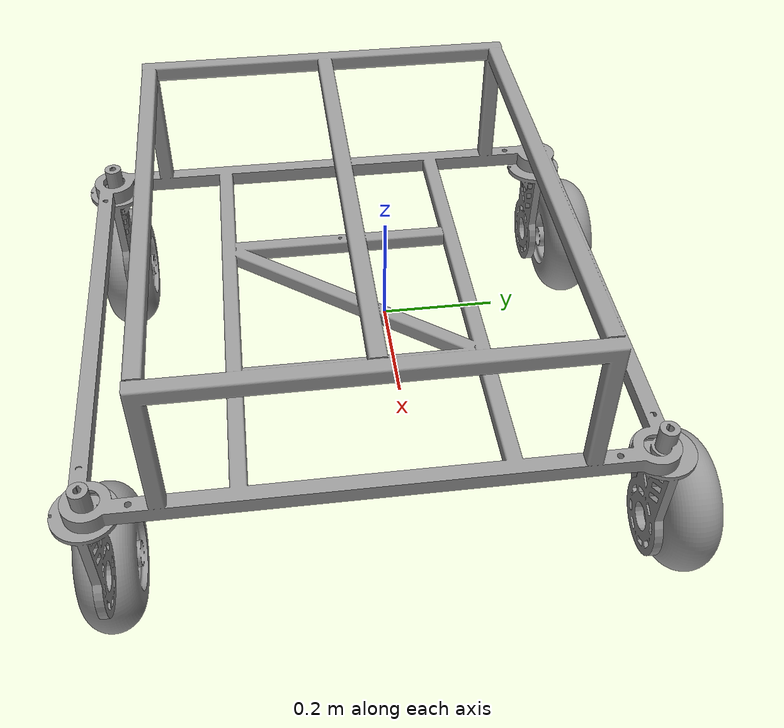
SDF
<?xml version='1.0'?>
<sdf version='1.7'>
  <model name='final'>
    <link name='link_2'>
      <inertial>
        <mass>1</mass>
        <inertia>
          <ixx>0.166667</ixx>
          <ixy>0</ixy>
          <ixz>0</ixz>
          <iyy>0.166667</iyy>
          <iyz>0</iyz>
          <izz>0.166667</izz>
        </inertia>
        <pose>0 0 0 0 -0 0</pose>
      </inertial>
      <pose>-0.311124 0.373143 0.112466 0 -0 0</pose>
      <gravity>1</gravity>
      <self_collide>0</self_collide>
      <kinematic>0</kinematic>
      <enable_wind>0</enable_wind>
      <visual name='visual'>
        <pose>0 0 0 0 -0 0</pose>
        <geometry>
          <mesh>
            <uri>/home/sammy-ros/catkin_ws/src/bot_4wd/urdf/meshes/base_frame.dae</uri>
            <scale>1 1 1</scale>
          </mesh>
        </geometry>
        <material>
          <lighting>1</lighting>
          <script>
            <uri>file://media/materials/scripts/gazebo.material</uri>
            <name>Gazebo/Grey</name>
          </script>
          <shader type='pixel'>
            <normal_map>__default__</normal_map>
          </shader>
          <ambient>0.3 0.3 0.3 1</ambient>
          <diffuse>0.7 0.7 0.7 1</diffuse>
          <specular>0.01 0.01 0.01 1</specular>
          <emissive>0 0 0 1</emissive>
        </material>
        <transparency>0</transparency>
        <cast_shadows>1</cast_shadows>
      </visual>
      <collision name='collision'>
        <laser_retro>0</laser_retro>
        <max_contacts>10</max_contacts>
        <pose>0 0 0 0 -0 0</pose>
        <geometry>
          <mesh>
            <uri>/home/sammy-ros/catkin_ws/src/bot_4wd/urdf/meshes/base_frame.dae</uri>
            <scale>1 1 1</scale>
          </mesh>
        </geometry>
        <surface>
          <friction>
            <ode>
              <mu>1</mu>
              <mu2>1</mu2>
              <fdir1>0 0 0</fdir1>
              <slip1>0</slip1>
              <slip2>0</slip2>
            </ode>
            <torsional>
              <coefficient>1</coefficient>
              <patch_radius>0</patch_radius>
              <surface_radius>0</surface_radius>
              <use_patch_radius>1</use_patch_radius>
              <ode>
                <slip>0</slip>
              </ode>
            </torsional>
          </friction>
          <bounce>
            <restitution_coefficient>0</restitution_coefficient>
            <threshold>1e+06</threshold>
          </bounce>
          <contact>
            <collide_without_contact>0</collide_without_contact>
            <collide_without_contact_bitmask>1</collide_without_contact_bitmask>
            <collide_bitmask>1</collide_bitmask>
            <ode>
              <soft_cfm>0</soft_cfm>
              <soft_erp>0.2</soft_erp>
              <kp>1e+13</kp>
              <kd>1</kd>
              <max_vel>0.01</max_vel>
              <min_depth>0</min_depth>
            </ode>
            <bullet>
              <split_impulse>1</split_impulse>
              <split_impulse_penetration_threshold>-0.01</split_impulse_penetration_threshold>
              <soft_cfm>0</soft_cfm>
              <soft_erp>0.2</soft_erp>
              <kp>1e+13</kp>
              <kd>1</kd>
            </bullet>
          </contact>
        </surface>
      </collision>
    </link>
    <link name='link_3'>
      <inertial>
        <mass>1</mass>
        <inertia>
          <ixx>0.166667</ixx>
          <ixy>0</ixy>
          <ixz>0</ixz>
          <iyy>0.166667</iyy>
          <iyz>0</iyz>
          <izz>0.166667</izz>
        </inertia>
        <pose>0 0 0 0 -0 0</pose>
      </inertial>
      <pose>-0.282869 -0.484545 0.150773 0 -0 0</pose>
      <gravity>1</gravity>
      <self_collide>0</self_collide>
      <kinematic>0</kinematic>
      <enable_wind>0</enable_wind>
      <visual name='visual'>
        <pose>0 0 0 0 -0 0</pose>
        <geometry>
          <mesh>
            <uri>/home/sammy-ros/catkin_ws/src/bot_4wd/urdf/meshes/knuckle.dae</uri>
            <scale>1 1 1</scale>
          </mesh>
        </geometry>
        <material>
          <lighting>1</lighting>
          <script>
            <uri>file://media/materials/scripts/gazebo.material</uri>
            <name>Gazebo/Grey</name>
          </script>
          <shader type='pixel'>
            <normal_map>__default__</normal_map>
          </shader>
          <ambient>0.3 0.3 0.3 1</ambient>
          <diffuse>0.7 0.7 0.7 1</diffuse>
          <specular>0.01 0.01 0.01 1</specular>
          <emissive>0 0 0 1</emissive>
        </material>
        <transparency>0</transparency>
        <cast_shadows>1</cast_shadows>
      </visual>
      <collision name='collision'>
        <laser_retro>0</laser_retro>
        <max_contacts>10</max_contacts>
        <pose>0 0 0 0 -0 0</pose>
        <geometry>
          <mesh>
            <uri>/home/sammy-ros/catkin_ws/src/bot_4wd/urdf/meshes/knuckle.dae</uri>
            <scale>1 1 1</scale>
          </mesh>
        </geometry>
        <surface>
          <friction>
            <ode>
              <mu>1</mu>
              <mu2>1</mu2>
              <fdir1>0 0 0</fdir1>
              <slip1>0</slip1>
              <slip2>0</slip2>
            </ode>
            <torsional>
              <coefficient>1</coefficient>
              <patch_radius>0</patch_radius>
              <surface_radius>0</surface_radius>
              <use_patch_radius>1</use_patch_radius>
              <ode>
                <slip>0</slip>
              </ode>
            </torsional>
          </friction>
          <bounce>
            <restitution_coefficient>0</restitution_coefficient>
            <threshold>1e+06</threshold>
          </bounce>
          <contact>
            <collide_without_contact>0</collide_without_contact>
            <collide_without_contact_bitmask>1</collide_without_contact_bitmask>
            <collide_bitmask>1</collide_bitmask>
            <ode>
              <soft_cfm>0</soft_cfm>
              <soft_erp>0.2</soft_erp>
              <kp>1e+13</kp>
              <kd>1</kd>
              <max_vel>0.01</max_vel>
              <min_depth>0</min_depth>
            </ode>
            <bullet>
              <split_impulse>1</split_impulse>
              <split_impulse_penetration_threshold>-0.01</split_impulse_penetration_threshold>
              <soft_cfm>0</soft_cfm>
              <soft_erp>0.2</soft_erp>
              <kp>1e+13</kp>
              <kd>1</kd>
            </bullet>
          </contact>
        </surface>
      </collision>
    </link>
    <link name='link_3_clone'>
      <inertial>
        <mass>1</mass>
        <inertia>
          <ixx>0.166667</ixx>
          <ixy>0</ixy>
          <ixz>0</ixz>
          <iyy>0.166667</iyy>
          <iyz>0</iyz>
          <izz>0.166667</izz>
        </inertia>
        <pose>0 0 0 0 -0 0</pose>
      </inertial>
      <pose>0.485543 -0.491746 0.150529 0 -0 0</pose>
      <gravity>1</gravity>
      <self_collide>0</self_collide>
      <kinematic>0</kinematic>
      <enable_wind>0</enable_wind>
      <visual name='visual'>
        <pose>0 0 0 0 -0 0</pose>
        <geometry>
          <mesh>
            <uri>/home/sammy-ros/catkin_ws/src/bot_4wd/urdf/meshes/knuckle.dae</uri>
            <scale>1 1 1</scale>
          </mesh>
        </geometry>
        <material>
          <lighting>1</lighting>
          <script>
            <uri>file://media/materials/scripts/gazebo.material</uri>
            <name>Gazebo/Grey</name>
          </script>
          <shader type='pixel'>
            <normal_map>__default__</normal_map>
          </shader>
          <ambient>0.3 0.3 0.3 1</ambient>
          <diffuse>0.7 0.7 0.7 1</diffuse>
          <specular>0.01 0.01 0.01 1</specular>
          <emissive>0 0 0 1</emissive>
        </material>
        <transparency>0</transparency>
        <cast_shadows>1</cast_shadows>
      </visual>
      <collision name='collision'>
        <laser_retro>0</laser_retro>
        <max_contacts>10</max_contacts>
        <pose>0 0 0 0 -0 0</pose>
        <geometry>
          <mesh>
            <uri>/home/sammy-ros/catkin_ws/src/bot_4wd/urdf/meshes/knuckle.dae</uri>
            <scale>1 1 1</scale>
          </mesh>
        </geometry>
        <surface>
          <friction>
            <ode>
              <mu>1</mu>
              <mu2>1</mu2>
              <fdir1>0 0 0</fdir1>
              <slip1>0</slip1>
              <slip2>0</slip2>
            </ode>
            <torsional>
              <coefficient>1</coefficient>
              <patch_radius>0</patch_radius>
              <surface_radius>0</surface_radius>
              <use_patch_radius>1</use_patch_radius>
              <ode>
                <slip>0</slip>
              </ode>
            </torsional>
          </friction>
          <bounce>
            <restitution_coefficient>0</restitution_coefficient>
            <threshold>1e+06</threshold>
          </bounce>
          <contact>
            <collide_without_contact>0</collide_without_contact>
            <collide_without_contact_bitmask>1</collide_without_contact_bitmask>
            <collide_bitmask>1</collide_bitmask>
            <ode>
              <soft_cfm>0</soft_cfm>
              <soft_erp>0.2</soft_erp>
              <kp>1e+13</kp>
              <kd>1</kd>
              <max_vel>0.01</max_vel>
              <min_depth>0</min_depth>
            </ode>
            <bullet>
              <split_impulse>1</split_impulse>
              <split_impulse_penetration_threshold>-0.01</split_impulse_penetration_threshold>
              <soft_cfm>0</soft_cfm>
              <soft_erp>0.2</soft_erp>
              <kp>1e+13</kp>
              <kd>1</kd>
            </bullet>
          </contact>
        </surface>
      </collision>
    </link>
    <link name='link_3_clone_clone'>
      <inertial>
        <mass>1</mass>
        <inertia>
          <ixx>0.166667</ixx>
          <ixy>0</ixy>
          <ixz>0</ixz>
          <iyy>0.166667</iyy>
          <iyz>0</iyz>
          <izz>0.166667</izz>
        </inertia>
        <pose>0 0 0 0 -0 0</pose>
      </inertial>
      <pose>-0.276066 0.335701 0.145189 0 -0 0</pose>
      <gravity>1</gravity>
      <self_collide>0</self_collide>
      <kinematic>0</kinematic>
      <enable_wind>0</enable_wind>
      <visual name='visual'>
        <pose>0 0 0 0 -0 0</pose>
        <geometry>
          <mesh>
            <uri>/home/sammy-ros/catkin_ws/src/bot_4wd/urdf/meshes/knuckle.dae</uri>
            <scale>1 1 1</scale>
          </mesh>
        </geometry>
        <material>
          <lighting>1</lighting>
          <script>
            <uri>file://media/materials/scripts/gazebo.material</uri>
            <name>Gazebo/Grey</name>
          </script>
          <shader type='pixel'>
            <normal_map>__default__</normal_map>
          </shader>
          <ambient>0.3 0.3 0.3 1</ambient>
          <diffuse>0.7 0.7 0.7 1</diffuse>
          <specular>0.01 0.01 0.01 1</specular>
          <emissive>0 0 0 1</emissive>
        </material>
        <transparency>0</transparency>
        <cast_shadows>1</cast_shadows>
      </visual>
      <collision name='collision'>
        <laser_retro>0</laser_retro>
        <max_contacts>10</max_contacts>
        <pose>0 0 0 0 -0 0</pose>
        <geometry>
          <mesh>
            <uri>/home/sammy-ros/catkin_ws/src/bot_4wd/urdf/meshes/knuckle.dae</uri>
            <scale>1 1 1</scale>
          </mesh>
        </geometry>
        <surface>
          <friction>
            <ode>
              <mu>1</mu>
              <mu2>1</mu2>
              <fdir1>0 0 0</fdir1>
              <slip1>0</slip1>
              <slip2>0</slip2>
            </ode>
            <torsional>
              <coefficient>1</coefficient>
              <patch_radius>0</patch_radius>
              <surface_radius>0</surface_radius>
              <use_patch_radius>1</use_patch_radius>
              <ode>
                <slip>0</slip>
              </ode>
            </torsional>
          </friction>
          <bounce>
            <restitution_coefficient>0</restitution_coefficient>
            <threshold>1e+06</threshold>
          </bounce>
          <contact>
            <collide_without_contact>0</collide_without_contact>
            <collide_without_contact_bitmask>1</collide_without_contact_bitmask>
            <collide_bitmask>1</collide_bitmask>
            <ode>
              <soft_cfm>0</soft_cfm>
              <soft_erp>0.2</soft_erp>
              <kp>1e+13</kp>
              <kd>1</kd>
              <max_vel>0.01</max_vel>
              <min_depth>0</min_depth>
            </ode>
            <bullet>
              <split_impulse>1</split_impulse>
              <split_impulse_penetration_threshold>-0.01</split_impulse_penetration_threshold>
              <soft_cfm>0</soft_cfm>
              <soft_erp>0.2</soft_erp>
              <kp>1e+13</kp>
              <kd>1</kd>
            </bullet>
          </contact>
        </surface>
      </collision>
    </link>
    <link name='link_3_clone_clone_clone'>
      <inertial>
        <mass>1</mass>
        <inertia>
          <ixx>0.166667</ixx>
          <ixy>0</ixy>
          <ixz>0</ixz>
          <iyy>0.166667</iyy>
          <iyz>0</iyz>
          <izz>0.166667</izz>
        </inertia>
        <pose>0 0 0 0 -0 0</pose>
      </inertial>
      <pose>0.47772 0.354843 0.151179 0 -0 0</pose>
      <gravity>1</gravity>
      <self_collide>0</self_collide>
      <kinematic>0</kinematic>
      <enable_wind>0</enable_wind>
      <visual name='visual'>
        <pose>0 0 0 0 -0 0</pose>
        <geometry>
          <mesh>
            <uri>/home/sammy-ros/catkin_ws/src/bot_4wd/urdf/meshes/knuckle.dae</uri>
            <scale>1 1 1</scale>
          </mesh>
        </geometry>
        <material>
          <lighting>1</lighting>
          <script>
            <uri>file://media/materials/scripts/gazebo.material</uri>
            <name>Gazebo/Grey</name>
          </script>
          <shader type='pixel'>
            <normal_map>__default__</normal_map>
          </shader>
          <ambient>0.3 0.3 0.3 1</ambient>
          <diffuse>0.7 0.7 0.7 1</diffuse>
          <specular>0.01 0.01 0.01 1</specular>
          <emissive>0 0 0 1</emissive>
        </material>
        <transparency>0</transparency>
        <cast_shadows>1</cast_shadows>
      </visual>
      <collision name='collision'>
        <laser_retro>0</laser_retro>
        <max_contacts>10</max_contacts>
        <pose>0 0 0 0 -0 0</pose>
        <geometry>
          <mesh>
            <uri>/home/sammy-ros/catkin_ws/src/bot_4wd/urdf/meshes/knuckle.dae</uri>
            <scale>1 1 1</scale>
          </mesh>
        </geometry>
        <surface>
          <friction>
            <ode>
              <mu>1</mu>
              <mu2>1</mu2>
              <fdir1>0 0 0</fdir1>
              <slip1>0</slip1>
              <slip2>0</slip2>
            </ode>
            <torsional>
              <coefficient>1</coefficient>
              <patch_radius>0</patch_radius>
              <surface_radius>0</surface_radius>
              <use_patch_radius>1</use_patch_radius>
              <ode>
                <slip>0</slip>
              </ode>
            </torsional>
          </friction>
          <bounce>
            <restitution_coefficient>0</restitution_coefficient>
            <threshold>1e+06</threshold>
          </bounce>
          <contact>
            <collide_without_contact>0</collide_without_contact>
            <collide_without_contact_bitmask>1</collide_without_contact_bitmask>
            <collide_bitmask>1</collide_bitmask>
            <ode>
              <soft_cfm>0</soft_cfm>
              <soft_erp>0.2</soft_erp>
              <kp>1e+13</kp>
              <kd>1</kd>
              <max_vel>0.01</max_vel>
              <min_depth>0</min_depth>
            </ode>
            <bullet>
              <split_impulse>1</split_impulse>
              <split_impulse_penetration_threshold>-0.01</split_impulse_penetration_threshold>
              <soft_cfm>0</soft_cfm>
              <soft_erp>0.2</soft_erp>
              <kp>1e+13</kp>
              <kd>1</kd>
            </bullet>
          </contact>
        </surface>
      </collision>
    </link>
    <link name='link_5'>
      <inertial>
        <mass>1</mass>
        <inertia>
          <ixx>0.166667</ixx>
          <ixy>0</ixy>
          <ixz>0</ixz>
          <iyy>0.166667</iyy>
          <iyz>0</iyz>
          <izz>0.166667</izz>
        </inertia>
        <pose>0 0 0 0 -0 0</pose>
      </inertial>
      <pose>-0.406806 -0.507263 -0.177534 0 -0 0</pose>
      <gravity>1</gravity>
      <self_collide>0</self_collide>
      <kinematic>0</kinematic>
      <enable_wind>0</enable_wind>
      <visual name='visual'>
        <pose>0 0 0 0 -0 0</pose>
        <geometry>
          <mesh>
            <uri>/home/sammy-ros/catkin_ws/src/bot_4wd/urdf/meshes/wheel.dae</uri>
            <scale>1 1 1</scale>
          </mesh>
        </geometry>
        <material>
          <lighting>1</lighting>
          <script>
            <uri>file://media/materials/scripts/gazebo.material</uri>
            <name>Gazebo/Grey</name>
          </script>
          <shader type='pixel'>
            <normal_map>__default__</normal_map>
          </shader>
          <ambient>0.3 0.3 0.3 1</ambient>
          <diffuse>0.7 0.7 0.7 1</diffuse>
          <specular>0.01 0.01 0.01 1</specular>
          <emissive>0 0 0 1</emissive>
        </material>
        <transparency>0</transparency>
        <cast_shadows>1</cast_shadows>
      </visual>
      <collision name='collision'>
        <laser_retro>0</laser_retro>
        <max_contacts>10</max_contacts>
        <pose>0 0 0 0 -0 0</pose>
        <geometry>
          <mesh>
            <uri>/home/sammy-ros/catkin_ws/src/bot_4wd/urdf/meshes/wheel.dae</uri>
            <scale>1 1 1</scale>
          </mesh>
        </geometry>
        <surface>
          <friction>
            <ode>
              <mu>1</mu>
              <mu2>1</mu2>
              <fdir1>0 0 0</fdir1>
              <slip1>0</slip1>
              <slip2>0</slip2>
            </ode>
            <torsional>
              <coefficient>1</coefficient>
              <patch_radius>0</patch_radius>
              <surface_radius>0</surface_radius>
              <use_patch_radius>1</use_patch_radius>
              <ode>
                <slip>0</slip>
              </ode>
            </torsional>
          </friction>
          <bounce>
            <restitution_coefficient>0</restitution_coefficient>
            <threshold>1e+06</threshold>
          </bounce>
          <contact>
            <collide_without_contact>0</collide_without_contact>
            <collide_without_contact_bitmask>1</collide_without_contact_bitmask>
            <collide_bitmask>1</collide_bitmask>
            <ode>
              <soft_cfm>0</soft_cfm>
              <soft_erp>0.2</soft_erp>
              <kp>1e+13</kp>
              <kd>1</kd>
              <max_vel>0.01</max_vel>
              <min_depth>0</min_depth>
            </ode>
            <bullet>
              <split_impulse>1</split_impulse>
              <split_impulse_penetration_threshold>-0.01</split_impulse_penetration_threshold>
              <soft_cfm>0</soft_cfm>
              <soft_erp>0.2</soft_erp>
              <kp>1e+13</kp>
              <kd>1</kd>
            </bullet>
          </contact>
        </surface>
      </collision>
    </link>
    <link name='link_5_clone'>
      <inertial>
        <mass>1</mass>
        <inertia>
          <ixx>0.166667</ixx>
          <ixy>0</ixy>
          <ixz>0</ixz>
          <iyy>0.166667</iyy>
          <iyz>0</iyz>
          <izz>0.166667</izz>
        </inertia>
      </inertial>
      <pose>0.356803 -0.508742 -0.177534 0 -0 0</pose>
      <visual name='visual'>
        <pose>0 0 0 0 -0 0</pose>
        <geometry>
          <mesh>
            <uri>/home/sammy-ros/catkin_ws/src/bot_4wd/urdf/meshes/wheel.dae</uri>
            <scale>1 1 1</scale>
          </mesh>
        </geometry>
        <material>
          <lighting>1</lighting>
          <script>
            <uri>file://media/materials/scripts/gazebo.material</uri>
            <name>Gazebo/Grey</name>
          </script>
          <shader type='pixel'/>
        </material>
        <transparency>0</transparency>
        <cast_shadows>1</cast_shadows>
      </visual>
      <collision name='collision'>
        <laser_retro>0</laser_retro>
        <max_contacts>10</max_contacts>
        <pose>0 0 0 0 -0 0</pose>
        <geometry>
          <mesh>
            <uri>/home/sammy-ros/catkin_ws/src/bot_4wd/urdf/meshes/wheel.dae</uri>
            <scale>1 1 1</scale>
          </mesh>
        </geometry>
        <surface>
          <friction>
            <ode>
              <mu>1</mu>
              <mu2>1</mu2>
              <fdir1>0 0 0</fdir1>
              <slip1>0</slip1>
              <slip2>0</slip2>
            </ode>
            <torsional>
              <coefficient>1</coefficient>
              <patch_radius>0</patch_radius>
              <surface_radius>0</surface_radius>
              <use_patch_radius>1</use_patch_radius>
              <ode>
                <slip>0</slip>
              </ode>
            </torsional>
          </friction>
          <bounce>
            <restitution_coefficient>0</restitution_coefficient>
            <threshold>1e+06</threshold>
          </bounce>
          <contact>
            <collide_without_contact>0</collide_without_contact>
            <collide_without_contact_bitmask>1</collide_without_contact_bitmask>
            <collide_bitmask>1</collide_bitmask>
            <ode>
              <soft_cfm>0</soft_cfm>
              <soft_erp>0.2</soft_erp>
              <kp>1e+13</kp>
              <kd>1</kd>
              <max_vel>0.01</max_vel>
              <min_depth>0</min_depth>
            </ode>
            <bullet>
              <split_impulse>1</split_impulse>
              <split_impulse_penetration_threshold>-0.01</split_impulse_penetration_threshold>
              <soft_cfm>0</soft_cfm>
              <soft_erp>0.2</soft_erp>
              <kp>1e+13</kp>
              <kd>1</kd>
            </bullet>
          </contact>
        </surface>
      </collision>
    </link>
    <link name='link_5_clone_0'>
      <inertial>
        <mass>1</mass>
        <inertia>
          <ixx>0.166667</ixx>
          <ixy>0</ixy>
          <ixz>0</ixz>
          <iyy>0.166667</iyy>
          <iyz>0</iyz>
          <izz>0.166667</izz>
        </inertia>
      </inertial>
      <pose>-0.399857 0.455826 -0.177534 0 -0 0</pose>
      <visual name='visual'>
        <pose>0 0 0 0 -0 0</pose>
        <geometry>
          <mesh>
            <uri>/home/sammy-ros/catkin_ws/src/bot_4wd/urdf/meshes/wheel.dae</uri>
            <scale>1 1 1</scale>
          </mesh>
        </geometry>
        <material>
          <lighting>1</lighting>
          <script>
            <uri>file://media/materials/scripts/gazebo.material</uri>
            <name>Gazebo/Grey</name>
          </script>
          <shader type='pixel'/>
        </material>
        <transparency>0</transparency>
        <cast_shadows>1</cast_shadows>
      </visual>
      <collision name='collision'>
        <laser_retro>0</laser_retro>
        <max_contacts>10</max_contacts>
        <pose>0 0 0 0 -0 0</pose>
        <geometry>
          <mesh>
            <uri>/home/sammy-ros/catkin_ws/src/bot_4wd/urdf/meshes/wheel.dae</uri>
            <scale>1 1 1</scale>
          </mesh>
        </geometry>
        <surface>
          <friction>
            <ode>
              <mu>1</mu>
              <mu2>1</mu2>
              <fdir1>0 0 0</fdir1>
              <slip1>0</slip1>
              <slip2>0</slip2>
            </ode>
            <torsional>
              <coefficient>1</coefficient>
              <patch_radius>0</patch_radius>
              <surface_radius>0</surface_radius>
              <use_patch_radius>1</use_patch_radius>
              <ode>
                <slip>0</slip>
              </ode>
            </torsional>
          </friction>
          <bounce>
            <restitution_coefficient>0</restitution_coefficient>
            <threshold>1e+06</threshold>
          </bounce>
          <contact>
            <collide_without_contact>0</collide_without_contact>
            <collide_without_contact_bitmask>1</collide_without_contact_bitmask>
            <collide_bitmask>1</collide_bitmask>
            <ode>
              <soft_cfm>0</soft_cfm>
              <soft_erp>0.2</soft_erp>
              <kp>1e+13</kp>
              <kd>1</kd>
              <max_vel>0.01</max_vel>
              <min_depth>0</min_depth>
            </ode>
            <bullet>
              <split_impulse>1</split_impulse>
              <split_impulse_penetration_threshold>-0.01</split_impulse_penetration_threshold>
              <soft_cfm>0</soft_cfm>
              <soft_erp>0.2</soft_erp>
              <kp>1e+13</kp>
              <kd>1</kd>
            </bullet>
          </contact>
        </surface>
      </collision>
    </link>
    <link name='link_5_clone_1'>
      <inertial>
        <mass>1</mass>
        <inertia>
          <ixx>0.166667</ixx>
          <ixy>0</ixy>
          <ixz>0</ixz>
          <iyy>0.166667</iyy>
          <iyz>0</iyz>
          <izz>0.166667</izz>
        </inertia>
      </inertial>
      <pose>0.356656 0.472781 -0.177534 0 -0 0</pose>
      <visual name='visual'>
        <pose>0 0 0 0 -0 0</pose>
        <geometry>
          <mesh>
            <uri>/home/sammy-ros/catkin_ws/src/bot_4wd/urdf/meshes/wheel.dae</uri>
            <scale>1 1 1</scale>
          </mesh>
        </geometry>
        <material>
          <lighting>1</lighting>
          <script>
            <uri>file://media/materials/scripts/gazebo.material</uri>
            <name>Gazebo/Grey</name>
          </script>
          <shader type='pixel'/>
        </material>
        <transparency>0</transparency>
        <cast_shadows>1</cast_shadows>
      </visual>
      <collision name='collision'>
        <laser_retro>0</laser_retro>
        <max_contacts>10</max_contacts>
        <pose>0 0 0 0 -0 0</pose>
        <geometry>
          <mesh>
            <uri>/home/sammy-ros/catkin_ws/src/bot_4wd/urdf/meshes/wheel.dae</uri>
            <scale>1 1 1</scale>
          </mesh>
        </geometry>
        <surface>
          <friction>
            <ode>
              <mu>1</mu>
              <mu2>1</mu2>
              <fdir1>0 0 0</fdir1>
              <slip1>0</slip1>
              <slip2>0</slip2>
            </ode>
            <torsional>
              <coefficient>1</coefficient>
              <patch_radius>0</patch_radius>
              <surface_radius>0</surface_radius>
              <use_patch_radius>1</use_patch_radius>
              <ode>
                <slip>0</slip>
              </ode>
            </torsional>
          </friction>
          <bounce>
            <restitution_coefficient>0</restitution_coefficient>
            <threshold>1e+06</threshold>
          </bounce>
          <contact>
            <collide_without_contact>0</collide_without_contact>
            <collide_without_contact_bitmask>1</collide_without_contact_bitmask>
            <collide_bitmask>1</collide_bitmask>
            <ode>
              <soft_cfm>0</soft_cfm>
              <soft_erp>0.2</soft_erp>
              <kp>1e+13</kp>
              <kd>1</kd>
              <max_vel>0.01</max_vel>
              <min_depth>0</min_depth>
            </ode>
            <bullet>
              <split_impulse>1</split_impulse>
              <split_impulse_penetration_threshold>-0.01</split_impulse_penetration_threshold>
              <soft_cfm>0</soft_cfm>
              <soft_erp>0.2</soft_erp>
              <kp>1e+13</kp>
              <kd>1</kd>
            </bullet>
          </contact>
        </surface>
      </collision>
    </link>
    <static>0</static>
    <allow_auto_disable>1</allow_auto_disable>
  </model>
</sdf>
